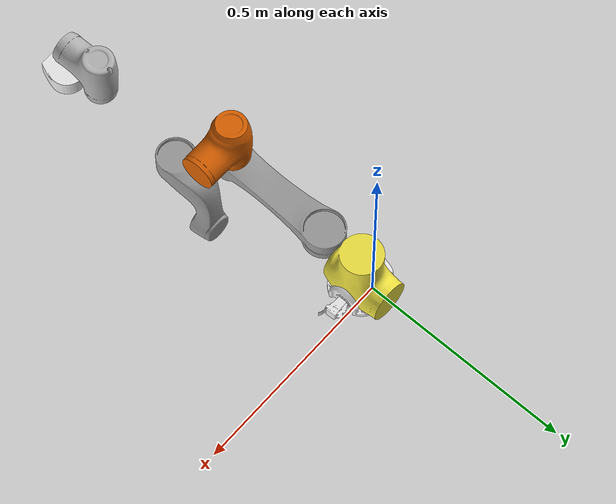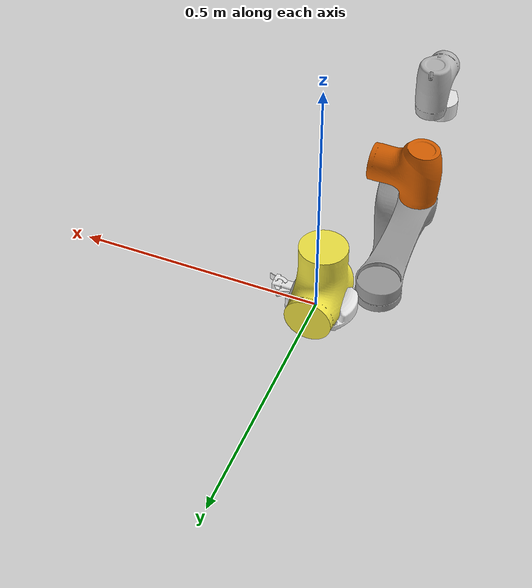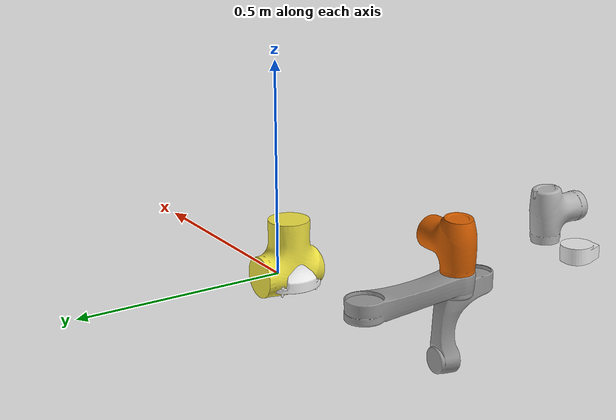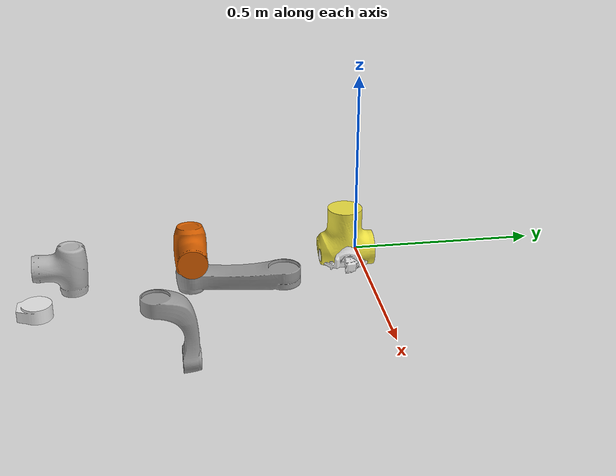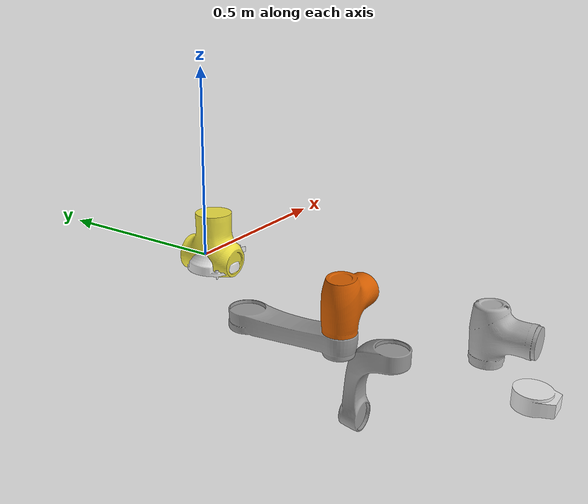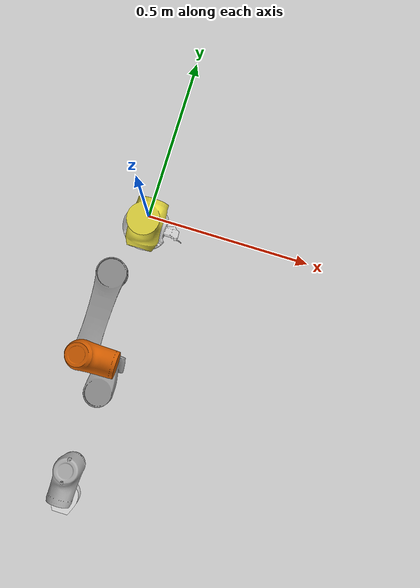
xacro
<robot
  name="elfin3" xmlns:xacro="http://www.ros.org/wiki/xacro">

  <xacro:include filename="$(find elfin_description)/urdf/materials.xacro" />

  <xacro:include filename="$(find elfin_description)/urdf/elfin_robot.gazebo" />

  <xacro:include filename="$(find elfin_description)/urdf/elfin_transmission.xacro" />

  <xacro:property name="PI" value="3.1415926535897931"/>

  <xacro:property name="density" value="3.09"/>

  <link name="world"/>

  <joint name="world_base" type="fixed">
    <origin
      xyz="0 0 0"
      rpy="0 0 0" />
    <parent
      link="world" />
    <child
      link="elfin_base_link" />
  </joint>

  <link name="elfin_base_link"/>

  <joint name="elfin_base_joint" type="fixed">
    <origin
      xyz="0 0 0"
      rpy="1.5707 0 0" />
    <parent
      link="elfin_base_link" />
    <child
      link="elfin_base" />
  </joint>

  <link
    name="elfin_base">
    <inertial>
      <origin
        xyz="0.000476057496448 -0.00609847721085 0.0271227961552"
        rpy="0 0 0"/>
      <mass value="${0.432503561632*density}"/>
      <inertia
      ixx="${0.00107966*density}" ixy="${6.43e-06*density}" ixz="${1.97e-06*density}"
      iyy="${0.00089216*density}" iyz="${-1.269e-05*density}"
      izz="${0.00174712*density}"/>
    </inertial>
    <visual>
      <origin
        xyz="0 -0.03 0.03"
        rpy="-1.5707 0 0" />
      <geometry>
        <mesh
          filename="package://elfin_description/meshes/elfin3/elfin_base.STL" />
      </geometry>
      <material
        name="metal_white"/>
    </visual>
    <collision>
      <origin
        xyz="0 0 0"
        rpy="-1.5707 0 0" />
      <geometry>
        <mesh
          filename="package://elfin_description/meshes/elfin3/elfin_base.STL" />
      </geometry>
    </collision>
  </link>
  <link
    name="elfin_link1">
    <inertial>
      <origin
        xyz="-0.0192425632808 0.120157543892 -2.05350524914e-05"
        rpy="0 0 0"/>
      <mass value="${1.52001312557*density}"/>
      <inertia
      ixx="${0.00523815*density}" ixy="${0.00122593*density}" ixz="${-1.6e-07*density}"
      iyy="${0.00315471*density}" iyz="${-6.4e-07*density}"
      izz="${0.00646649*density}"/>
    </inertial>
    <visual>
      <origin
        xyz="0 0 0"
        rpy="0 0 0" />
      <geometry>
        <mesh
          filename="package://elfin_description/meshes/elfin3/elfin_link1.STL" />
      </geometry>
      <material
        name="metal"/>
    </visual>
    <collision>
      <origin
        xyz="0 0 0"
        rpy="0 0 0" />
      <geometry>
        <mesh
          filename="package://elfin_description/meshes/elfin3/elfin_link1.STL" />
      </geometry>
    </collision>
  </link>
  <joint
    name="elfin_joint1"
    type="revolute">
    <origin
      xyz="0 0 0.031"
      rpy="${PI/2} 0 0" />
    <parent
      link="elfin_base" />
    <child
      link="elfin_link1" />
    <axis
      xyz="0 1 0" />
    <limit
      lower="-3.14"
      upper="3.14"
      effort="104"
      velocity="1.57" />
  </joint>
  <link
    name="elfin_link2">
    <inertial>
      <origin
        xyz="-0.0363359816546 0.121774838175 -3.84046105722e-05"
        rpy="0 0 0"/>
      <mass value="${0.519672255247*density}"/>
      <inertia
      ixx="${0.00564813*density}" ixy="${-0.00026473*density}" ixz="${0.0*density}"
      iyy="${0.00053594*density}" iyz="${1.29e-06*density}"
      izz="${0.00545618*density}"/>
    </inertial>
    <visual>
      <origin
        xyz="0 0 0"
        rpy="0 0 0" />
      <geometry>
        <mesh
          filename="package://elfin_description/meshes/elfin3/elfin_link2.STL" />
      </geometry>
      <material
        name="metal_grey"/>
    </visual>
    <collision>
      <origin
        xyz="0 0 0"
        rpy="0 0 0" />
      <geometry>
        <mesh
          filename="package://elfin_description/meshes/elfin3/elfin_link2.STL" />
      </geometry>
    </collision>
  </link>
  <joint
    name="elfin_joint2"
    type="revolute">
    <origin
      xyz="-0.068808 0.1615 0"
      rpy="0 0 0" />
    <parent
      link="elfin_link1" />
    <child
      link="elfin_link2" />
    <axis
      xyz="-1 0 0" />
    <limit
      lower="-2.35"
      upper="2.35"
      effort="104"
      velocity="1.57" />
  </joint>
  <link
    name="elfin_link3">
    <inertial>
      <origin
        xyz="0.0513625008301 -0.0377418700977 -1.41484011876e-05"
        rpy="0 0 0"/>
      <mass value="${1.07514585114*density}"/>
      <inertia
      ixx="${0.00296619*density}" ixy="${0.00072021*density}" ixz="${7.3e-07*density}"
      iyy="${0.00182263*density}" iyz="${-3.7e-07*density}"
      izz="${0.00372855*density}"/>
    </inertial>
    <visual>
      <origin
        xyz="0 0 0"
        rpy="0 0 0" />
      <geometry>
        <mesh
          filename="package://elfin_description/meshes/elfin3/elfin_link3.STL" />
      </geometry>
      <material
        name="metal"/>
    </visual>
    <collision>
      <origin
        xyz="0 0 0"
        rpy="0 0 0" />
      <geometry>
        <mesh
          filename="package://elfin_description/meshes/elfin3/elfin_link3.STL" />
      </geometry>
    </collision>
  </link>
  <joint
    name="elfin_joint3"
    type="revolute">
    <origin
      xyz="0 0.266 0"
      rpy="${-PI} 0 0" />
    <parent
      link="elfin_link2" />
    <child
      link="elfin_link3" />
    <axis
      xyz="1 0 0" />
    <limit
      lower="-2.61"
      upper="2.61"
      effort="69"
      velocity="1.57" />
  </joint>
  <link
    name="elfin_link4">
    <inertial>
      <origin
        xyz="-0.0580853772834 0.10002233137 -3.45203877103e-06"
        rpy="0 0 0"/>
      <mass value="${0.37026646381*density}"/>
      <inertia
      ixx="${0.00238279*density}" ixy="${0.00082955*density}" ixz="${1.1e-07*density}"
      iyy="${0.00095758*density}" iyz="${-3.2e-07*density}"
      izz="${0.00285161*density}"/>
    </inertial>
    <visual>
      <origin
        xyz="0 0 0"
        rpy="0 0 0" />
      <geometry>
        <mesh
          filename="package://elfin_description/meshes/elfin3/elfin_link4.STL" />
      </geometry>
      <material
        name="metal_grey"/>
    </visual>
    <collision>
      <origin
        xyz="0 0 0"
        rpy="0 0 0" />
      <geometry>
        <mesh
          filename="package://elfin_description/meshes/elfin3/elfin_link4.STL" />
      </geometry>
    </collision>
  </link>
  <joint
    name="elfin_joint4"
    type="revolute">
    <origin
      xyz="0.068808 -0.10523 0"
      rpy="3.1415 0 0" />
    <parent
      link="elfin_link3" />
    <child
      link="elfin_link4" />
    <axis
      xyz="0 1 0" />
    <limit
      lower="-3.14"
      upper="3.14"
      effort="69"
      velocity="1.57" />
  </joint>
  <link
    name="elfin_link5">
    <inertial>
      <origin
        xyz="-0.0158710385319 -0.0365214098995 4.94388107361e-07"
        rpy="0 0 0"/>
      <mass value="${0.807027243448*density}"/>
      <inertia
      ixx="${0.00193719*density}" ixy="${0.00047145*density}" ixz="${2e-08*density}"
      iyy="${0.00112857*density}" iyz="${-1.1e-07*density}"
      izz="${0.00245655*density}"/>
    </inertial>
    <visual>
      <origin
        xyz="0 0 0"
        rpy="0 0 0" />
      <geometry>
        <mesh
          filename="package://elfin_description/meshes/elfin3/elfin_link5.STL" />
      </geometry>
      <material
        name="metal"/>
    </visual>
    <collision>
      <origin
        xyz="0 0 0"
        rpy="0 0 0" />
      <geometry>
        <mesh
          filename="package://elfin_description/meshes/elfin3/elfin_link5.STL" />
      </geometry>
    </collision>
  </link>
  <joint
    name="elfin_joint5"
    type="revolute">
    <origin
      xyz="0 0.21877 0"
      rpy="${-PI} 0 0" />
    <parent
      link="elfin_link4" />
    <child
      link="elfin_link5" />
    <axis
      xyz="1 0 0" />
    <limit
      lower="-2.56"
      upper="2.56"
      effort="34"
      velocity="1.57" />
  </joint>
  <link
    name="elfin_link6">
    <inertial>
      <origin
        xyz="-0.0009237 -0.042691 -0.0003367"
        rpy="0 0 0" />
      <mass value="${0.147312*density}"/>
      <inertia
      ixx="${0.00019407*density}" ixy="${1.4e-06*density}" ixz="${-2.89e-06*density}"
      iyy="${0.00019592*density}" iyz="${5e-08*density}"
      izz="${0.00019496*density}"/>
    </inertial>
    <visual>
      <origin
        xyz="0 0 0"
        rpy="0 0 0" />
      <geometry>
        <mesh
          filename="package://elfin_description/meshes/elfin3/elfin_link6.STL" />
      </geometry>
      <material
        name="metal_white"/>
    </visual>
    <collision>
      <origin
        xyz="0 0 0"
        rpy="0 0 0" />
      <geometry>
        <mesh
          filename="package://elfin_description/meshes/elfin3/elfin_link6.STL" />
      </geometry>
    </collision>
  </link>
  <joint
    name="elfin_joint6"
    type="revolute">
    <origin
      xyz="0 -0.1065 0"
      rpy="${-PI} 0 ${-PI}" />
    <parent
      link="elfin_link5" />
    <child
      link="elfin_link6" />
    <axis
      xyz="0 -1 0" />
    <limit
      lower="-3.14"
      upper="3.14"
      effort="34"
      velocity="1.57" />
  </joint>

  <link name="elfin_end_link"/>

  <joint name="elfin_end_joint" type="fixed">
    <origin
      xyz="0 -0.091 0"
      rpy="${PI/2} ${-PI/2} 0" />
    <parent
      link="elfin_link6" />
    <child
      link="elfin_end_link" />
  </joint>

  <link name="elfin_dummy_gripper"/>

  <joint name="elfin_dummy_joint" type="fixed">
    <origin
      xyz="0 -0.111 0"
      rpy="${PI/2} ${-PI/2} 0" />
    <parent
      link="elfin_link6" />
    <child
      link="elfin_dummy_gripper" />
  </joint>

</robot>
